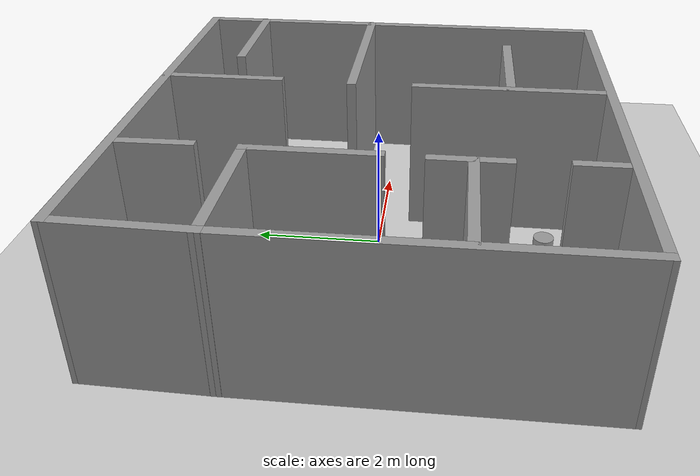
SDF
<sdf version="1.7">
 <world name="default">
  <light name="sun" type="directional">
   <pose>0 0 10 0 -0 0</pose>
   <diffuse>0.8 0.8 0.8 1</diffuse>
   <specular>0.2 0.2 0.2 1</specular>
   <attenuation>
    <range>1000</range>
    <constant>0.9</constant>
    <linear>0.01</linear>
    <quadratic>0.001</quadratic>
   </attenuation>
   <direction>-0.5 0.1 -0.9</direction>
   <spot><inner_angle>0</inner_angle><outer_angle>0</outer_angle><falloff>0</falloff></spot>
  </light>
  <model name="ground_plane">
   <static>1</static>
   <link name="link">
    <collision name="collision">
     <geometry><plane><normal>0 0 1</normal><size>100 100</size></plane></geometry>
     <surface><friction><ode><mu>100</mu><mu2>50</mu2></ode></friction></surface>
    </collision>
    <visual name="visual">
     <cast_shadows>0</cast_shadows>
     <geometry><plane><normal>0 0 1</normal><size>100 100</size></plane></geometry>
     <material>
      <script><uri>file://media/materials/scripts/gazebo.material</uri><name>Gazebo/Grey</name></script>
     </material>
    </visual>
   </link>
  </model>
  <gravity>0 0 -9.8</gravity>
  <magnetic_field>6e-06 2.3e-05 -4.2e-05</magnetic_field>
  <atmosphere type="adiabatic"/>
  <physics type="ode">
   <max_step_size>0.001</max_step_size>
   <real_time_factor>1</real_time_factor>
   <real_time_update_rate>1000</real_time_update_rate>
  </physics>
  <scene><ambient>0.4 0.4 0.4 1</ambient><background>0.7 0.7 0.7 1</background><shadows>1</shadows></scene>
  <spherical_coordinates>
   <surface_model>EARTH_WGS84</surface_model>
   <latitude_deg>0</latitude_deg>
   <longitude_deg>0</longitude_deg>
   <elevation>0</elevation>
   <heading_deg>0</heading_deg>
  </spherical_coordinates>
  <model name="Room">
   <link name="Wall_18">
    <pose>-1.5854 0.745278 0 0 0 -1.5708</pose>
    <visual name="Wall_18_Visual">
     <pose>0 0 1.25 0 -0 0</pose>
     <geometry><box><size>2 0.15 2.5</size></box></geometry>
     <material>
      <script><uri>file://media/materials/scripts/gazebo.material</uri><name>Gazebo/Grey</name></script>
      <ambient>1 1 1 1</ambient>
      <shader type="pixel"/>
     </material>
     <meta><layer>0</layer></meta>
    </visual>
    <collision name="Wall_18_Collision">
     <pose>0 0 1.25 0 -0 0</pose>
     <geometry><box><size>2 0.15 2.5</size></box></geometry>
     <surface>
      <friction>
       <ode><mu>1</mu><mu2>1</mu2><fdir1>0 0 0</fdir1><slip1>0</slip1><slip2>0</slip2></ode>
       <torsional>
        <coefficient>1</coefficient>
        <patch_radius>0</patch_radius>
        <surface_radius>0</surface_radius>
        <use_patch_radius>1</use_patch_radius>
        <ode><slip>0</slip></ode>
       </torsional>
      </friction>
      <bounce><restitution_coefficient>0</restitution_coefficient><threshold>1e+06</threshold></bounce>
      <contact>
       <collide_without_contact>0</collide_without_contact>
       <collide_without_contact_bitmask>1</collide_without_contact_bitmask>
       <collide_bitmask>1</collide_bitmask>
       <ode>
        <soft_cfm>0</soft_cfm>
        <soft_erp>0.2</soft_erp>
        <kp>1e+13</kp>
        <kd>1</kd>
        <max_vel>0.01</max_vel>
        <min_depth>0</min_depth>
       </ode>
       <bullet>
        <split_impulse>1</split_impulse>
        <split_impulse_penetration_threshold>-0.01</split_impulse_penetration_threshold>
        <soft_cfm>0</soft_cfm>
        <soft_erp>0.2</soft_erp>
        <kp>1e+13</kp>
        <kd>1</kd>
       </bullet>
      </contact>
     </surface>
    </collision>
   </link>
   <link name="Wall_20">
    <pose>-2.5905 1.67689 0 0 -0 3.13501</pose>
    <visual name="Wall_20_Visual">
     <pose>0 0 1.25 0 -0 0</pose>
     <geometry><box><size>2.1602 0.15 2.5</size></box></geometry>
     <material>
      <script><uri>file://media/materials/scripts/gazebo.material</uri><name>Gazebo/Grey</name></script>
      <ambient>1 1 1 1</ambient>
      <shader type="pixel"/>
     </material>
     <meta><layer>0</layer></meta>
    </visual>
    <collision name="Wall_20_Collision">
     <pose>0 0 1.25 0 -0 0</pose>
     <geometry><box><size>2.1602 0.15 2.5</size></box></geometry>
     <surface>
      <friction>
       <ode><mu>1</mu><mu2>1</mu2><fdir1>0 0 0</fdir1><slip1>0</slip1><slip2>0</slip2></ode>
       <torsional>
        <coefficient>1</coefficient>
        <patch_radius>0</patch_radius>
        <surface_radius>0</surface_radius>
        <use_patch_radius>1</use_patch_radius>
        <ode><slip>0</slip></ode>
       </torsional>
      </friction>
      <bounce><restitution_coefficient>0</restitution_coefficient><threshold>1e+06</threshold></bounce>
      <contact>
       <collide_without_contact>0</collide_without_contact>
       <collide_without_contact_bitmask>1</collide_without_contact_bitmask>
       <collide_bitmask>1</collide_bitmask>
       <ode>
        <soft_cfm>0</soft_cfm>
        <soft_erp>0.2</soft_erp>
        <kp>1e+13</kp>
        <kd>1</kd>
        <max_vel>0.01</max_vel>
        <min_depth>0</min_depth>
       </ode>
       <bullet>
        <split_impulse>1</split_impulse>
        <split_impulse_penetration_threshold>-0.01</split_impulse_penetration_threshold>
        <soft_cfm>0</soft_cfm>
        <soft_erp>0.2</soft_erp>
        <kp>1e+13</kp>
        <kd>1</kd>
       </bullet>
      </contact>
     </surface>
    </collision>
   </link>
   <link name="Wall_21">
    <pose>-3.58899 -0.915209 0 0 0 -1.56825</pose>
    <visual name="Wall_21_Visual">
     <pose>0 0 1.25 0 -0 0</pose>
     <geometry><box><size>5.34749 0.15 2.5</size></box></geometry>
     <material>
      <script><uri>file://media/materials/scripts/gazebo.material</uri><name>Gazebo/Grey</name></script>
      <ambient>1 1 1 1</ambient>
      <shader type="pixel"/>
     </material>
     <meta><layer>0</layer></meta>
    </visual>
    <collision name="Wall_21_Collision">
     <pose>0 0 1.25 0 -0 0</pose>
     <geometry><box><size>5.34749 0.15 2.5</size></box></geometry>
     <surface>
      <friction>
       <ode><mu>1</mu><mu2>1</mu2><fdir1>0 0 0</fdir1><slip1>0</slip1><slip2>0</slip2></ode>
       <torsional>
        <coefficient>1</coefficient>
        <patch_radius>0</patch_radius>
        <surface_radius>0</surface_radius>
        <use_patch_radius>1</use_patch_radius>
        <ode><slip>0</slip></ode>
       </torsional>
      </friction>
      <bounce><restitution_coefficient>0</restitution_coefficient><threshold>1e+06</threshold></bounce>
      <contact>
       <collide_without_contact>0</collide_without_contact>
       <collide_without_contact_bitmask>1</collide_without_contact_bitmask>
       <collide_bitmask>1</collide_bitmask>
       <ode>
        <soft_cfm>0</soft_cfm>
        <soft_erp>0.2</soft_erp>
        <kp>1e+13</kp>
        <kd>1</kd>
        <max_vel>0.01</max_vel>
        <min_depth>0</min_depth>
       </ode>
       <bullet>
        <split_impulse>1</split_impulse>
        <split_impulse_penetration_threshold>-0.01</split_impulse_penetration_threshold>
        <soft_cfm>0</soft_cfm>
        <soft_erp>0.2</soft_erp>
        <kp>1e+13</kp>
        <kd>1</kd>
       </bullet>
      </contact>
     </surface>
    </collision>
   </link>
   <link name="Wall_22">
    <pose>0.001595 -3.52053 0 0 0 -0.001845</pose>
    <visual name="Wall_22_Visual">
     <pose>0 0 1.25 0 -0 0</pose>
     <geometry><box><size>7.31795 0.15 2.5</size></box></geometry>
     <material>
      <script><uri>file://media/materials/scripts/gazebo.material</uri><name>Gazebo/Grey</name></script>
      <ambient>1 1 1 1</ambient>
      <shader type="pixel"/>
     </material>
     <meta><layer>0</layer></meta>
    </visual>
    <collision name="Wall_22_Collision">
     <pose>0 0 1.25 0 -0 0</pose>
     <geometry><box><size>7.31795 0.15 2.5</size></box></geometry>
     <surface>
      <friction>
       <ode><mu>1</mu><mu2>1</mu2><fdir1>0 0 0</fdir1><slip1>0</slip1><slip2>0</slip2></ode>
       <torsional>
        <coefficient>1</coefficient>
        <patch_radius>0</patch_radius>
        <surface_radius>0</surface_radius>
        <use_patch_radius>1</use_patch_radius>
        <ode><slip>0</slip></ode>
       </torsional>
      </friction>
      <bounce><restitution_coefficient>0</restitution_coefficient><threshold>1e+06</threshold></bounce>
      <contact>
       <collide_without_contact>0</collide_without_contact>
       <collide_without_contact_bitmask>1</collide_without_contact_bitmask>
       <collide_bitmask>1</collide_bitmask>
       <ode>
        <soft_cfm>0</soft_cfm>
        <soft_erp>0.2</soft_erp>
        <kp>1e+13</kp>
        <kd>1</kd>
        <max_vel>0.01</max_vel>
        <min_depth>0</min_depth>
       </ode>
       <bullet>
        <split_impulse>1</split_impulse>
        <split_impulse_penetration_threshold>-0.01</split_impulse_penetration_threshold>
        <soft_cfm>0</soft_cfm>
        <soft_erp>0.2</soft_erp>
        <kp>1e+13</kp>
        <kd>1</kd>
       </bullet>
      </contact>
     </surface>
    </collision>
   </link>
   <link name="Wall_23">
    <pose>3.58875 -0.00133 0 0 -0 1.56989</pose>
    <visual name="Wall_23_Visual">
     <pose>0 0 1.25 0 -0 0</pose>
     <geometry><box><size>7.20167 0.15 2.5</size></box></geometry>
     <material>
      <script><uri>file://media/materials/scripts/gazebo.material</uri><name>Gazebo/Grey</name></script>
      <ambient>1 1 1 1</ambient>
      <shader type="pixel"/>
     </material>
     <meta><layer>0</layer></meta>
    </visual>
    <collision name="Wall_23_Collision">
     <pose>0 0 1.25 0 -0 0</pose>
     <geometry><box><size>7.20167 0.15 2.5</size></box></geometry>
     <surface>
      <friction>
       <ode><mu>1</mu><mu2>1</mu2><fdir1>0 0 0</fdir1><slip1>0</slip1><slip2>0</slip2></ode>
       <torsional>
        <coefficient>1</coefficient>
        <patch_radius>0</patch_radius>
        <surface_radius>0</surface_radius>
        <use_patch_radius>1</use_patch_radius>
        <ode><slip>0</slip></ode>
       </torsional>
      </friction>
      <bounce><restitution_coefficient>0</restitution_coefficient><threshold>1e+06</threshold></bounce>
      <contact>
       <collide_without_contact>0</collide_without_contact>
       <collide_without_contact_bitmask>1</collide_without_contact_bitmask>
       <collide_bitmask>1</collide_bitmask>
       <ode>
        <soft_cfm>0</soft_cfm>
        <soft_erp>0.2</soft_erp>
        <kp>1e+13</kp>
        <kd>1</kd>
        <max_vel>0.01</max_vel>
        <min_depth>0</min_depth>
       </ode>
       <bullet>
        <split_impulse>1</split_impulse>
        <split_impulse_penetration_threshold>-0.01</split_impulse_penetration_threshold>
        <soft_cfm>0</soft_cfm>
        <soft_erp>0.2</soft_erp>
        <kp>1e+13</kp>
        <kd>1</kd>
       </bullet>
      </contact>
     </surface>
    </collision>
   </link>
   <link name="Wall_24">
    <pose>0.015696 3.52449 0 0 -0 3.14159</pose>
    <inertial>
     <mass>1</mass>
     <inertia><ixx>1</ixx><ixy>0</ixy><ixz>0</ixz><iyy>1</iyy><iyz>0</iyz><izz>1</izz></inertia>
    </inertial>
    <visual name="Wall_24_Visual">
     <pose>0 0 1.25 0 -0 0</pose>
     <geometry><box><size>7.30247 0.15 2.5</size></box></geometry>
     <material>
      <script><uri>file://media/materials/scripts/gazebo.material</uri><name>Gazebo/Grey</name></script>
      <ambient>1 1 1 1</ambient>
      <shader type="pixel"><normal_map>__default__</normal_map></shader>
      <diffuse>0 0 0 1</diffuse>
      <specular>0.1 0.1 0.1 1</specular>
      <emissive>0 0 0 1</emissive>
     </material>
     <meta><layer>0</layer></meta>
    </visual>
    <collision name="Wall_24_Collision">
     <pose>0 0 1.25 0 -0 0</pose>
     <geometry><box><size>7.30247 0.15 2.5</size></box></geometry>
     <surface>
      <friction>
       <ode><mu>1</mu><mu2>1</mu2><fdir1>0 0 0</fdir1><slip1>0</slip1><slip2>0</slip2></ode>
       <torsional>
        <coefficient>1</coefficient>
        <patch_radius>0</patch_radius>
        <surface_radius>0</surface_radius>
        <use_patch_radius>1</use_patch_radius>
        <ode><slip>0</slip></ode>
       </torsional>
      </friction>
      <bounce><restitution_coefficient>0</restitution_coefficient><threshold>1e+06</threshold></bounce>
      <contact>
       <collide_without_contact>0</collide_without_contact>
       <collide_without_contact_bitmask>1</collide_without_contact_bitmask>
       <collide_bitmask>1</collide_bitmask>
       <ode>
        <soft_cfm>0</soft_cfm>
        <soft_erp>0.2</soft_erp>
        <kp>1e+13</kp>
        <kd>1</kd>
        <max_vel>0.01</max_vel>
        <min_depth>0</min_depth>
       </ode>
       <bullet>
        <split_impulse>1</split_impulse>
        <split_impulse_penetration_threshold>-0.01</split_impulse_penetration_threshold>
        <soft_cfm>0</soft_cfm>
        <soft_erp>0.2</soft_erp>
        <kp>1e+13</kp>
        <kd>1</kd>
       </bullet>
      </contact>
     </surface>
    </collision>
   </link>
   <link name="Wall_26">
    <pose>-3.57807 2.60399 0 0 0 -1.58984</pose>
    <visual name="Wall_26_Visual">
     <pose>0 0 1.25 0 -0 0</pose>
     <geometry><box><size>1.99132 0.15 2.5</size></box></geometry>
     <material>
      <script><uri>file://media/materials/scripts/gazebo.material</uri><name>Gazebo/Grey</name></script>
      <ambient>1 1 1 1</ambient>
      <shader type="pixel"/>
     </material>
     <meta><layer>0</layer></meta>
    </visual>
    <collision name="Wall_26_Collision">
     <pose>0 0 1.25 0 -0 0</pose>
     <geometry><box><size>1.99132 0.15 2.5</size></box></geometry>
     <surface>
      <friction>
       <ode><mu>1</mu><mu2>1</mu2><fdir1>0 0 0</fdir1><slip1>0</slip1><slip2>0</slip2></ode>
       <torsional>
        <coefficient>1</coefficient>
        <patch_radius>0</patch_radius>
        <surface_radius>0</surface_radius>
        <use_patch_radius>1</use_patch_radius>
        <ode><slip>0</slip></ode>
       </torsional>
      </friction>
      <bounce><restitution_coefficient>0</restitution_coefficient><threshold>1e+06</threshold></bounce>
      <contact>
       <collide_without_contact>0</collide_without_contact>
       <collide_without_contact_bitmask>1</collide_without_contact_bitmask>
       <collide_bitmask>1</collide_bitmask>
       <ode>
        <soft_cfm>0</soft_cfm>
        <soft_erp>0.2</soft_erp>
        <kp>1e+13</kp>
        <kd>1</kd>
        <max_vel>0.01</max_vel>
        <min_depth>0</min_depth>
       </ode>
       <bullet>
        <split_impulse>1</split_impulse>
        <split_impulse_penetration_threshold>-0.01</split_impulse_penetration_threshold>
        <soft_cfm>0</soft_cfm>
        <soft_erp>0.2</soft_erp>
        <kp>1e+13</kp>
        <kd>1</kd>
       </bullet>
      </contact>
     </surface>
    </collision>
   </link>
   <link name="Wall_28">
    <pose>-1.55292 2.96644 0 0 0 -1.55517</pose>
    <visual name="Wall_28_Visual">
     <pose>0 0 1.25 0 -0 0</pose>
     <geometry><box><size>1.2695 0.15 2.5</size></box></geometry>
     <material>
      <script><uri>file://media/materials/scripts/gazebo.material</uri><name>Gazebo/Grey</name></script>
      <ambient>1 1 1 1</ambient>
      <shader type="pixel"/>
     </material>
     <meta><layer>0</layer></meta>
    </visual>
    <collision name="Wall_28_Collision">
     <pose>0 0 1.25 0 -0 0</pose>
     <geometry><box><size>1.2695 0.15 2.5</size></box></geometry>
     <surface>
      <friction>
       <ode><mu>1</mu><mu2>1</mu2><fdir1>0 0 0</fdir1><slip1>0</slip1><slip2>0</slip2></ode>
       <torsional>
        <coefficient>1</coefficient>
        <patch_radius>0</patch_radius>
        <surface_radius>0</surface_radius>
        <use_patch_radius>1</use_patch_radius>
        <ode><slip>0</slip></ode>
       </torsional>
      </friction>
      <bounce><restitution_coefficient>0</restitution_coefficient><threshold>1e+06</threshold></bounce>
      <contact>
       <collide_without_contact>0</collide_without_contact>
       <collide_without_contact_bitmask>1</collide_without_contact_bitmask>
       <collide_bitmask>1</collide_bitmask>
       <ode>
        <soft_cfm>0</soft_cfm>
        <soft_erp>0.2</soft_erp>
        <kp>1e+13</kp>
        <kd>1</kd>
        <max_vel>0.01</max_vel>
        <min_depth>0</min_depth>
       </ode>
       <bullet>
        <split_impulse>1</split_impulse>
        <split_impulse_penetration_threshold>-0.01</split_impulse_penetration_threshold>
        <soft_cfm>0</soft_cfm>
        <soft_erp>0.2</soft_erp>
        <kp>1e+13</kp>
        <kd>1</kd>
       </bullet>
      </contact>
     </surface>
    </collision>
   </link>
   <link name="Wall_30">
    <pose>0.782 2.59915 0 0 0 -1.5708</pose>
    <visual name="Wall_30_Visual">
     <pose>0 0 1.25 0 -0 0</pose>
     <geometry><box><size>1.96897 0.15 2.5</size></box></geometry>
     <material>
      <script><uri>file://media/materials/scripts/gazebo.material</uri><name>Gazebo/Grey</name></script>
      <ambient>1 1 1 1</ambient>
      <shader type="pixel"/>
     </material>
     <meta><layer>0</layer></meta>
    </visual>
    <collision name="Wall_30_Collision">
     <pose>0 0 1.25 0 -0 0</pose>
     <geometry><box><size>1.96897 0.15 2.5</size></box></geometry>
     <surface>
      <friction>
       <ode><mu>1</mu><mu2>1</mu2><fdir1>0 0 0</fdir1><slip1>0</slip1><slip2>0</slip2></ode>
       <torsional>
        <coefficient>1</coefficient>
        <patch_radius>0</patch_radius>
        <surface_radius>0</surface_radius>
        <use_patch_radius>1</use_patch_radius>
        <ode><slip>0</slip></ode>
       </torsional>
      </friction>
      <bounce><restitution_coefficient>0</restitution_coefficient><threshold>1e+06</threshold></bounce>
      <contact>
       <collide_without_contact>0</collide_without_contact>
       <collide_without_contact_bitmask>1</collide_without_contact_bitmask>
       <collide_bitmask>1</collide_bitmask>
       <ode>
        <soft_cfm>0</soft_cfm>
        <soft_erp>0.2</soft_erp>
        <kp>1e+13</kp>
        <kd>1</kd>
        <max_vel>0.01</max_vel>
        <min_depth>0</min_depth>
       </ode>
       <bullet>
        <split_impulse>1</split_impulse>
        <split_impulse_penetration_threshold>-0.01</split_impulse_penetration_threshold>
        <soft_cfm>0</soft_cfm>
        <soft_erp>0.2</soft_erp>
        <kp>1e+13</kp>
        <kd>1</kd>
       </bullet>
      </contact>
     </surface>
    </collision>
   </link>
   <link name="Wall_33">
    <pose>2.65541 2.52919 0 0 -0 3.14159</pose>
    <visual name="Wall_33_Visual">
     <pose>0 0 1.25 0 -0 0</pose>
     <geometry><box><size>2 0.15 2.5</size></box></geometry>
     <material>
      <script><uri>file://media/materials/scripts/gazebo.material</uri><name>Gazebo/Grey</name></script>
      <ambient>1 1 1 1</ambient>
      <shader type="pixel"/>
     </material>
     <meta><layer>0</layer></meta>
    </visual>
    <collision name="Wall_33_Collision">
     <pose>0 0 1.25 0 -0 0</pose>
     <geometry><box><size>2 0.15 2.5</size></box></geometry>
     <surface>
      <friction>
       <ode><mu>1</mu><mu2>1</mu2><fdir1>0 0 0</fdir1><slip1>0</slip1><slip2>0</slip2></ode>
       <torsional>
        <coefficient>1</coefficient>
        <patch_radius>0</patch_radius>
        <surface_radius>0</surface_radius>
        <use_patch_radius>1</use_patch_radius>
        <ode><slip>0</slip></ode>
       </torsional>
      </friction>
      <bounce><restitution_coefficient>0</restitution_coefficient><threshold>1e+06</threshold></bounce>
      <contact>
       <collide_without_contact>0</collide_without_contact>
       <collide_without_contact_bitmask>1</collide_without_contact_bitmask>
       <collide_bitmask>1</collide_bitmask>
       <ode>
        <soft_cfm>0</soft_cfm>
        <soft_erp>0.2</soft_erp>
        <kp>1e+13</kp>
        <kd>1</kd>
        <max_vel>0.01</max_vel>
        <min_depth>0</min_depth>
       </ode>
       <bullet>
        <split_impulse>1</split_impulse>
        <split_impulse_penetration_threshold>-0.01</split_impulse_penetration_threshold>
        <soft_cfm>0</soft_cfm>
        <soft_erp>0.2</soft_erp>
        <kp>1e+13</kp>
        <kd>1</kd>
       </bullet>
      </contact>
     </surface>
    </collision>
   </link>
   <link name="Wall_35">
    <pose>-1.61414 -1.37984 0 0 0 -1.5708</pose>
    <visual name="Wall_35_Visual">
     <pose>0 0 1.25 0 -0 0</pose>
     <geometry><box><size>1.18251 0.15 2.5</size></box></geometry>
     <material>
      <script><uri>file://media/materials/scripts/gazebo.material</uri><name>Gazebo/Grey</name></script>
      <ambient>1 1 1 1</ambient>
      <shader type="pixel"/>
     </material>
     <meta><layer>0</layer></meta>
    </visual>
    <collision name="Wall_35_Collision">
     <pose>0 0 1.25 0 -0 0</pose>
     <geometry><box><size>1.18251 0.15 2.5</size></box></geometry>
     <surface>
      <friction>
       <ode><mu>1</mu><mu2>1</mu2><fdir1>0 0 0</fdir1><slip1>0</slip1><slip2>0</slip2></ode>
       <torsional>
        <coefficient>1</coefficient>
        <patch_radius>0</patch_radius>
        <surface_radius>0</surface_radius>
        <use_patch_radius>1</use_patch_radius>
        <ode><slip>0</slip></ode>
       </torsional>
      </friction>
      <bounce><restitution_coefficient>0</restitution_coefficient><threshold>1e+06</threshold></bounce>
      <contact>
       <collide_without_contact>0</collide_without_contact>
       <collide_without_contact_bitmask>1</collide_without_contact_bitmask>
       <collide_bitmask>1</collide_bitmask>
       <ode>
        <soft_cfm>0</soft_cfm>
        <soft_erp>0.2</soft_erp>
        <kp>1e+13</kp>
        <kd>1</kd>
        <max_vel>0.01</max_vel>
        <min_depth>0</min_depth>
       </ode>
       <bullet>
        <split_impulse>1</split_impulse>
        <split_impulse_penetration_threshold>-0.01</split_impulse_penetration_threshold>
        <soft_cfm>0</soft_cfm>
        <soft_erp>0.2</soft_erp>
        <kp>1e+13</kp>
        <kd>1</kd>
       </bullet>
      </contact>
     </surface>
    </collision>
   </link>
   <link name="Wall_37">
    <pose>-2.57412 -1.42356 0 0 -0 3.14159</pose>
    <visual name="Wall_37_Visual">
     <pose>0 0 1.25 0 -0 0</pose>
     <geometry><box><size>2 0.15 2.5</size></box></geometry>
     <material>
      <script><uri>file://media/materials/scripts/gazebo.material</uri><name>Gazebo/Grey</name></script>
      <ambient>1 1 1 1</ambient>
      <shader type="pixel"/>
     </material>
     <meta><layer>0</layer></meta>
    </visual>
    <collision name="Wall_37_Collision">
     <pose>0 0 1.25 0 -0 0</pose>
     <geometry><box><size>2 0.15 2.5</size></box></geometry>
     <surface>
      <friction>
       <ode><mu>1</mu><mu2>1</mu2><fdir1>0 0 0</fdir1><slip1>0</slip1><slip2>0</slip2></ode>
       <torsional>
        <coefficient>1</coefficient>
        <patch_radius>0</patch_radius>
        <surface_radius>0</surface_radius>
        <use_patch_radius>1</use_patch_radius>
        <ode><slip>0</slip></ode>
       </torsional>
      </friction>
      <bounce><restitution_coefficient>0</restitution_coefficient><threshold>1e+06</threshold></bounce>
      <contact>
       <collide_without_contact>0</collide_without_contact>
       <collide_without_contact_bitmask>1</collide_without_contact_bitmask>
       <collide_bitmask>1</collide_bitmask>
       <ode>
        <soft_cfm>0</soft_cfm>
        <soft_erp>0.2</soft_erp>
        <kp>1e+13</kp>
        <kd>1</kd>
        <max_vel>0.01</max_vel>
        <min_depth>0</min_depth>
       </ode>
       <bullet>
        <split_impulse>1</split_impulse>
        <split_impulse_penetration_threshold>-0.01</split_impulse_penetration_threshold>
        <soft_cfm>0</soft_cfm>
        <soft_erp>0.2</soft_erp>
        <kp>1e+13</kp>
        <kd>1</kd>
       </bullet>
      </contact>
     </surface>
    </collision>
   </link>
   <link name="Wall_39">
    <pose>0.74702 -1.95657 0 0 0 -1.5708</pose>
    <visual name="Wall_39_Visual">
     <pose>0 0 1.25 0 -0 0</pose>
     <geometry><box><size>3 0.15 2.5</size></box></geometry>
     <material>
      <script><uri>file://media/materials/scripts/gazebo.material</uri><name>Gazebo/Grey</name></script>
      <ambient>1 1 1 1</ambient>
      <shader type="pixel"/>
     </material>
     <meta><layer>0</layer></meta>
    </visual>
    <collision name="Wall_39_Collision">
     <pose>0 0 1.25 0 -0 0</pose>
     <geometry><box><size>3 0.15 2.5</size></box></geometry>
     <surface>
      <friction>
       <ode><mu>1</mu><mu2>1</mu2><fdir1>0 0 0</fdir1><slip1>0</slip1><slip2>0</slip2></ode>
       <torsional>
        <coefficient>1</coefficient>
        <patch_radius>0</patch_radius>
        <surface_radius>0</surface_radius>
        <use_patch_radius>1</use_patch_radius>
        <ode><slip>0</slip></ode>
       </torsional>
      </friction>
      <bounce><restitution_coefficient>0</restitution_coefficient><threshold>1e+06</threshold></bounce>
      <contact>
       <collide_without_contact>0</collide_without_contact>
       <collide_without_contact_bitmask>1</collide_without_contact_bitmask>
       <collide_bitmask>1</collide_bitmask>
       <ode>
        <soft_cfm>0</soft_cfm>
        <soft_erp>0.2</soft_erp>
        <kp>1e+13</kp>
        <kd>1</kd>
        <max_vel>0.01</max_vel>
        <min_depth>0</min_depth>
       </ode>
       <bullet>
        <split_impulse>1</split_impulse>
        <split_impulse_penetration_threshold>-0.01</split_impulse_penetration_threshold>
        <soft_cfm>0</soft_cfm>
        <soft_erp>0.2</soft_erp>
        <kp>1e+13</kp>
        <kd>1</kd>
       </bullet>
      </contact>
     </surface>
    </collision>
   </link>
   <link name="Wall_41">
    <pose>1.68951 -2.00074 0 0 -0 0</pose>
    <visual name="Wall_41_Visual">
     <pose>0 0 1.25 0 -0 0</pose>
     <geometry><box><size>2 0.15 2.5</size></box></geometry>
     <material>
      <script><uri>file://media/materials/scripts/gazebo.material</uri><name>Gazebo/Grey</name></script>
      <ambient>1 1 1 1</ambient>
      <shader type="pixel"/>
     </material>
     <meta><layer>0</layer></meta>
    </visual>
    <collision name="Wall_41_Collision">
     <pose>0 0 1.25 0 -0 0</pose>
     <geometry><box><size>2 0.15 2.5</size></box></geometry>
     <surface>
      <friction>
       <ode><mu>1</mu><mu2>1</mu2><fdir1>0 0 0</fdir1><slip1>0</slip1><slip2>0</slip2></ode>
       <torsional>
        <coefficient>1</coefficient>
        <patch_radius>0</patch_radius>
        <surface_radius>0</surface_radius>
        <use_patch_radius>1</use_patch_radius>
        <ode><slip>0</slip></ode>
       </torsional>
      </friction>
      <bounce><restitution_coefficient>0</restitution_coefficient><threshold>1e+06</threshold></bounce>
      <contact>
       <collide_without_contact>0</collide_without_contact>
       <collide_without_contact_bitmask>1</collide_without_contact_bitmask>
       <collide_bitmask>1</collide_bitmask>
       <ode>
        <soft_cfm>0</soft_cfm>
        <soft_erp>0.2</soft_erp>
        <kp>1e+13</kp>
        <kd>1</kd>
        <max_vel>0.01</max_vel>
        <min_depth>0</min_depth>
       </ode>
       <bullet>
        <split_impulse>1</split_impulse>
        <split_impulse_penetration_threshold>-0.01</split_impulse_penetration_threshold>
        <soft_cfm>0</soft_cfm>
        <soft_erp>0.2</soft_erp>
        <kp>1e+13</kp>
        <kd>1</kd>
       </bullet>
      </contact>
     </surface>
    </collision>
   </link>
   <link name="Wall_43">
    <pose>2.17202 0.500342 0 0 -0 0</pose>
    <visual name="Wall_43_Visual">
     <pose>0 0 1.25 0 -0 0</pose>
     <geometry><box><size>3 0.15 2.5</size></box></geometry>
     <material>
      <script><uri>file://media/materials/scripts/gazebo.material</uri><name>Gazebo/Grey</name></script>
      <ambient>1 1 1 1</ambient>
      <shader type="pixel"/>
     </material>
     <meta><layer>0</layer></meta>
    </visual>
    <collision name="Wall_43_Collision">
     <pose>0 0 1.25 0 -0 0</pose>
     <geometry><box><size>3 0.15 2.5</size></box></geometry>
     <surface>
      <friction>
       <ode><mu>1</mu><mu2>1</mu2><fdir1>0 0 0</fdir1><slip1>0</slip1><slip2>0</slip2></ode>
       <torsional>
        <coefficient>1</coefficient>
        <patch_radius>0</patch_radius>
        <surface_radius>0</surface_radius>
        <use_patch_radius>1</use_patch_radius>
        <ode><slip>0</slip></ode>
       </torsional>
      </friction>
      <bounce><restitution_coefficient>0</restitution_coefficient><threshold>1e+06</threshold></bounce>
      <contact>
       <collide_without_contact>0</collide_without_contact>
       <collide_without_contact_bitmask>1</collide_without_contact_bitmask>
       <collide_bitmask>1</collide_bitmask>
       <ode>
        <soft_cfm>0</soft_cfm>
        <soft_erp>0.2</soft_erp>
        <kp>1e+13</kp>
        <kd>1</kd>
        <max_vel>0.01</max_vel>
        <min_depth>0</min_depth>
       </ode>
       <bullet>
        <split_impulse>1</split_impulse>
        <split_impulse_penetration_threshold>-0.01</split_impulse_penetration_threshold>
        <soft_cfm>0</soft_cfm>
        <soft_erp>0.2</soft_erp>
        <kp>1e+13</kp>
        <kd>1</kd>
       </bullet>
      </contact>
     </surface>
    </collision>
   </link>
   <link name="Wall_45">
    <pose>-1.58064 -3.06524 0 0 0 -1.5708</pose>
    <visual name="Wall_45_Visual">
     <pose>0 0 1.25 0 -0 0</pose>
     <geometry><box><size>0.75 0.15 2.5</size></box></geometry>
     <material>
      <script><uri>file://media/materials/scripts/gazebo.material</uri><name>Gazebo/Grey</name></script>
      <ambient>1 1 1 1</ambient>
      <shader type="pixel"/>
     </material>
     <meta><layer>0</layer></meta>
    </visual>
    <collision name="Wall_45_Collision">
     <pose>0 0 1.25 0 -0 0</pose>
     <geometry><box><size>0.75 0.15 2.5</size></box></geometry>
     <surface>
      <friction>
       <ode><mu>1</mu><mu2>1</mu2><fdir1>0 0 0</fdir1><slip1>0</slip1><slip2>0</slip2></ode>
       <torsional>
        <coefficient>1</coefficient>
        <patch_radius>0</patch_radius>
        <surface_radius>0</surface_radius>
        <use_patch_radius>1</use_patch_radius>
        <ode><slip>0</slip></ode>
       </torsional>
      </friction>
      <bounce><restitution_coefficient>0</restitution_coefficient><threshold>1e+06</threshold></bounce>
      <contact>
       <collide_without_contact>0</collide_without_contact>
       <collide_without_contact_bitmask>1</collide_without_contact_bitmask>
       <collide_bitmask>1</collide_bitmask>
       <ode>
        <soft_cfm>0</soft_cfm>
        <soft_erp>0.2</soft_erp>
        <kp>1e+13</kp>
        <kd>1</kd>
        <max_vel>0.01</max_vel>
        <min_depth>0</min_depth>
       </ode>
       <bullet>
        <split_impulse>1</split_impulse>
        <split_impulse_penetration_threshold>-0.01</split_impulse_penetration_threshold>
        <soft_cfm>0</soft_cfm>
        <soft_erp>0.2</soft_erp>
        <kp>1e+13</kp>
        <kd>1</kd>
       </bullet>
      </contact>
     </surface>
    </collision>
   </link>
   <static>1</static>
   <pose>0.01134 0.009619 0 0 -0 0</pose>
  </model>
  <model name="blob">
   <link name="link_0">
    <inertial>
     <mass>0.0430038</mass>
     <inertia>
      <ixx>0.00093384</ixx>
      <ixy>0</ixy>
      <ixz>0</ixz>
      <iyy>0.00093384</iyy>
      <iyz>0</iyz>
      <izz>0.00053662</izz>
     </inertia>
    </inertial>
    <visual name="visual">
     <geometry><cylinder><radius>0.157977</radius><length>0.430945</length></cylinder></geometry>
     <material>
      <lighting>1</lighting>
      <script><uri>file://media/materials/scripts/gazebo.material</uri><name>Gazebo/Grey</name></script>
      <shader type="pixel"><normal_map>__default__</normal_map></shader>
      <ambient>0.3 0.3 0.3 1</ambient>
      <diffuse>0.7 0.7 0.7 1</diffuse>
      <specular>0.01 0.01 0.01 1</specular>
      <emissive>0 0 0 1</emissive>
     </material>
    </visual>
    <collision name="collision_0">
     <geometry><cylinder><radius>0.157977</radius><length>0.430945</length></cylinder></geometry>
     <surface>
      <friction>
       <ode><mu>1</mu><mu2>1</mu2><fdir1>0 0 0</fdir1><slip1>0</slip1><slip2>0</slip2></ode>
       <torsional>
        <coefficient>1</coefficient>
        <patch_radius>0</patch_radius>
        <surface_radius>0</surface_radius>
        <use_patch_radius>1</use_patch_radius>
        <ode><slip>0</slip></ode>
       </torsional>
      </friction>
      <bounce><restitution_coefficient>0</restitution_coefficient><threshold>1e+06</threshold></bounce>
      <contact>
       <collide_without_contact>0</collide_without_contact>
       <collide_without_contact_bitmask>1</collide_without_contact_bitmask>
       <collide_bitmask>1</collide_bitmask>
       <ode>
        <soft_cfm>0</soft_cfm>
        <soft_erp>0.2</soft_erp>
        <kp>1e+13</kp>
        <kd>1</kd>
        <max_vel>0.01</max_vel>
        <min_depth>0</min_depth>
       </ode>
       <bullet>
        <split_impulse>1</split_impulse>
        <split_impulse_penetration_threshold>-0.01</split_impulse_penetration_threshold>
        <soft_cfm>0</soft_cfm>
        <soft_erp>0.2</soft_erp>
        <kp>1e+13</kp>
        <kd>1</kd>
       </bullet>
      </contact>
     </surface>
    </collision>
   </link>
   <static>1</static>
   <pose>-2.49826 2.81597 0.225398 0 -0 0</pose>
  </model>
  <model name="blob_clone">
   <link name="link_0">
    <inertial>
     <mass>0.0430038</mass>
     <inertia>
      <ixx>0.00093384</ixx>
      <ixy>0</ixy>
      <ixz>0</ixz>
      <iyy>0.00093384</iyy>
      <iyz>0</iyz>
      <izz>0.00053662</izz>
     </inertia>
    </inertial>
    <visual name="visual">
     <geometry><cylinder><radius>0.157977</radius><length>0.430945</length></cylinder></geometry>
     <material>
      <lighting>1</lighting>
      <script><uri>file://media/materials/scripts/gazebo.material</uri><name>Gazebo/Grey</name></script>
      <shader type="pixel"><normal_map>__default__</normal_map></shader>
      <ambient>0.3 0.3 0.3 1</ambient>
      <diffuse>0.7 0.7 0.7 1</diffuse>
      <specular>0.01 0.01 0.01 1</specular>
      <emissive>0 0 0 1</emissive>
     </material>
    </visual>
    <collision name="collision_0">
     <geometry><cylinder><radius>0.157977</radius><length>0.430945</length></cylinder></geometry>
     <surface>
      <friction>
       <ode><mu>1</mu><mu2>1</mu2><fdir1>0 0 0</fdir1><slip1>0</slip1><slip2>0</slip2></ode>
       <torsional>
        <coefficient>1</coefficient>
        <patch_radius>0</patch_radius>
        <surface_radius>0</surface_radius>
        <use_patch_radius>1</use_patch_radius>
        <ode><slip>0</slip></ode>
       </torsional>
      </friction>
      <bounce><restitution_coefficient>0</restitution_coefficient><threshold>1e+06</threshold></bounce>
      <contact>
       <collide_without_contact>0</collide_without_contact>
       <collide_without_contact_bitmask>1</collide_without_contact_bitmask>
       <collide_bitmask>1</collide_bitmask>
       <ode>
        <soft_cfm>0</soft_cfm>
        <soft_erp>0.2</soft_erp>
        <kp>1e+13</kp>
        <kd>1</kd>
        <max_vel>0.01</max_vel>
        <min_depth>0</min_depth>
       </ode>
       <bullet>
        <split_impulse>1</split_impulse>
        <split_impulse_penetration_threshold>-0.01</split_impulse_penetration_threshold>
        <soft_cfm>0</soft_cfm>
        <soft_erp>0.2</soft_erp>
        <kp>1e+13</kp>
        <kd>1</kd>
       </bullet>
      </contact>
     </surface>
    </collision>
   </link>
   <static>1</static>
   <pose>-2.62718 0.734263 0.20037 0 -0 0</pose>
  </model>
  <model name="blob_clone_0">
   <link name="link_0">
    <inertial>
     <mass>0.0430038</mass>
     <inertia>
      <ixx>0.00093384</ixx>
      <ixy>0</ixy>
      <ixz>0</ixz>
      <iyy>0.00093384</iyy>
      <iyz>0</iyz>
      <izz>0.00053662</izz>
     </inertia>
    </inertial>
    <visual name="visual">
     <geometry><cylinder><radius>0.157977</radius><length>0.430945</length></cylinder></geometry>
     <material>
      <lighting>1</lighting>
      <script><uri>file://media/materials/scripts/gazebo.material</uri><name>Gazebo/Grey</name></script>
      <shader type="pixel"><normal_map>__default__</normal_map></shader>
      <ambient>0.3 0.3 0.3 1</ambient>
      <diffuse>0.7 0.7 0.7 1</diffuse>
      <specular>0.01 0.01 0.01 1</specular>
      <emissive>0 0 0 1</emissive>
     </material>
    </visual>
    <collision name="collision_0">
     <geometry><cylinder><radius>0.157977</radius><length>0.430945</length></cylinder></geometry>
     <surface>
      <friction>
       <ode><mu>1</mu><mu2>1</mu2><fdir1>0 0 0</fdir1><slip1>0</slip1><slip2>0</slip2></ode>
       <torsional>
        <coefficient>1</coefficient>
        <patch_radius>0</patch_radius>
        <surface_radius>0</surface_radius>
        <use_patch_radius>1</use_patch_radius>
        <ode><slip>0</slip></ode>
       </torsional>
      </friction>
      <bounce><restitution_coefficient>0</restitution_coefficient><threshold>1e+06</threshold></bounce>
      <contact>
       <collide_without_contact>0</collide_without_contact>
       <collide_without_contact_bitmask>1</collide_without_contact_bitmask>
       <collide_bitmask>1</collide_bitmask>
       <ode>
        <soft_cfm>0</soft_cfm>
        <soft_erp>0.2</soft_erp>
        <kp>1e+13</kp>
        <kd>1</kd>
        <max_vel>0.01</max_vel>
        <min_depth>0</min_depth>
       </ode>
       <bullet>
        <split_impulse>1</split_impulse>
        <split_impulse_penetration_threshold>-0.01</split_impulse_penetration_threshold>
        <soft_cfm>0</soft_cfm>
        <soft_erp>0.2</soft_erp>
        <kp>1e+13</kp>
        <kd>1</kd>
       </bullet>
      </contact>
     </surface>
    </collision>
   </link>
   <static>1</static>
   <pose>2.08196 1.75815 0.225398 0 -0 0</pose>
  </model>
  <model name="blob_clone_1">
   <link name="link_0">
    <inertial>
     <mass>0.0430038</mass>
     <inertia>
      <ixx>0.00093384</ixx>
      <ixy>0</ixy>
      <ixz>0</ixz>
      <iyy>0.00093384</iyy>
      <iyz>0</iyz>
      <izz>0.00053662</izz>
     </inertia>
    </inertial>
    <visual name="visual">
     <geometry><cylinder><radius>0.157977</radius><length>0.430945</length></cylinder></geometry>
     <material>
      <lighting>1</lighting>
      <script><uri>file://media/materials/scripts/gazebo.material</uri><name>Gazebo/Grey</name></script>
      <shader type="pixel"><normal_map>__default__</normal_map></shader>
      <ambient>0.3 0.3 0.3 1</ambient>
      <diffuse>0.7 0.7 0.7 1</diffuse>
      <specular>0.01 0.01 0.01 1</specular>
      <emissive>0 0 0 1</emissive>
     </material>
    </visual>
    <collision name="collision_0">
     <geometry><cylinder><radius>0.157977</radius><length>0.430945</length></cylinder></geometry>
     <surface>
      <friction>
       <ode><mu>1</mu><mu2>1</mu2><fdir1>0 0 0</fdir1><slip1>0</slip1><slip2>0</slip2></ode>
       <torsional>
        <coefficient>1</coefficient>
        <patch_radius>0</patch_radius>
        <surface_radius>0</surface_radius>
        <use_patch_radius>1</use_patch_radius>
        <ode><slip>0</slip></ode>
       </torsional>
      </friction>
      <bounce><restitution_coefficient>0</restitution_coefficient><threshold>1e+06</threshold></bounce>
      <contact>
       <collide_without_contact>0</collide_without_contact>
       <collide_without_contact_bitmask>1</collide_without_contact_bitmask>
       <collide_bitmask>1</collide_bitmask>
       <ode>
        <soft_cfm>0</soft_cfm>
        <soft_erp>0.2</soft_erp>
        <kp>1e+13</kp>
        <kd>1</kd>
        <max_vel>0.01</max_vel>
        <min_depth>0</min_depth>
       </ode>
       <bullet>
        <split_impulse>1</split_impulse>
        <split_impulse_penetration_threshold>-0.01</split_impulse_penetration_threshold>
        <soft_cfm>0</soft_cfm>
        <soft_erp>0.2</soft_erp>
        <kp>1e+13</kp>
        <kd>1</kd>
       </bullet>
      </contact>
     </surface>
    </collision>
   </link>
   <static>1</static>
   <pose>2.95563 3.14969 0.225398 0 -0 0</pose>
  </model>
  <model name="blob_clone_2">
   <link name="link_0">
    <inertial>
     <mass>0.0430038</mass>
     <inertia>
      <ixx>0.00093384</ixx>
      <ixy>0</ixy>
      <ixz>0</ixz>
      <iyy>0.00093384</iyy>
      <iyz>0</iyz>
      <izz>0.00053662</izz>
     </inertia>
    </inertial>
    <visual name="visual">
     <geometry><cylinder><radius>0.157977</radius><length>0.430945</length></cylinder></geometry>
     <material>
      <lighting>1</lighting>
      <script><uri>file://media/materials/scripts/gazebo.material</uri><name>Gazebo/Grey</name></script>
      <shader type="pixel"><normal_map>__default__</normal_map></shader>
      <ambient>0.3 0.3 0.3 1</ambient>
      <diffuse>0.7 0.7 0.7 1</diffuse>
      <specular>0.01 0.01 0.01 1</specular>
      <emissive>0 0 0 1</emissive>
     </material>
    </visual>
    <collision name="collision_0">
     <geometry><cylinder><radius>0.157977</radius><length>0.430945</length></cylinder></geometry>
     <surface>
      <friction>
       <ode><mu>1</mu><mu2>1</mu2><fdir1>0 0 0</fdir1><slip1>0</slip1><slip2>0</slip2></ode>
       <torsional>
        <coefficient>1</coefficient>
        <patch_radius>0</patch_radius>
        <surface_radius>0</surface_radius>
        <use_patch_radius>1</use_patch_radius>
        <ode><slip>0</slip></ode>
       </torsional>
      </friction>
      <bounce><restitution_coefficient>0</restitution_coefficient><threshold>1e+06</threshold></bounce>
      <contact>
       <collide_without_contact>0</collide_without_contact>
       <collide_without_contact_bitmask>1</collide_without_contact_bitmask>
       <collide_bitmask>1</collide_bitmask>
       <ode>
        <soft_cfm>0</soft_cfm>
        <soft_erp>0.2</soft_erp>
        <kp>1e+13</kp>
        <kd>1</kd>
        <max_vel>0.01</max_vel>
        <min_depth>0</min_depth>
       </ode>
       <bullet>
        <split_impulse>1</split_impulse>
        <split_impulse_penetration_threshold>-0.01</split_impulse_penetration_threshold>
        <soft_cfm>0</soft_cfm>
        <soft_erp>0.2</soft_erp>
        <kp>1e+13</kp>
        <kd>1</kd>
       </bullet>
      </contact>
     </surface>
    </collision>
   </link>
   <static>1</static>
   <pose>2.58752 -0.700485 0.225398 0 -0 0</pose>
  </model>
  <model name="blob_clone_3">
   <link name="link_0">
    <inertial>
     <mass>0.0430038</mass>
     <inertia>
      <ixx>0.00093384</ixx>
      <ixy>0</ixy>
      <ixz>0</ixz>
      <iyy>0.00093384</iyy>
      <iyz>0</iyz>
      <izz>0.00053662</izz>
     </inertia>
    </inertial>
    <visual name="visual">
     <geometry><cylinder><radius>0.157977</radius><length>0.430945</length></cylinder></geometry>
     <material>
      <lighting>1</lighting>
      <script><uri>file://media/materials/scripts/gazebo.material</uri><name>Gazebo/Grey</name></script>
      <shader type="pixel"><normal_map>__default__</normal_map></shader>
      <ambient>0.3 0.3 0.3 1</ambient>
      <diffuse>0.7 0.7 0.7 1</diffuse>
      <specular>0.01 0.01 0.01 1</specular>
      <emissive>0 0 0 1</emissive>
     </material>
    </visual>
    <collision name="collision_0">
     <geometry><cylinder><radius>0.157977</radius><length>0.430945</length></cylinder></geometry>
     <surface>
      <friction>
       <ode><mu>1</mu><mu2>1</mu2><fdir1>0 0 0</fdir1><slip1>0</slip1><slip2>0</slip2></ode>
       <torsional>
        <coefficient>1</coefficient>
        <patch_radius>0</patch_radius>
        <surface_radius>0</surface_radius>
        <use_patch_radius>1</use_patch_radius>
        <ode><slip>0</slip></ode>
       </torsional>
      </friction>
      <bounce><restitution_coefficient>0</restitution_coefficient><threshold>1e+06</threshold></bounce>
      <contact>
       <collide_without_contact>0</collide_without_contact>
       <collide_without_contact_bitmask>1</collide_without_contact_bitmask>
       <collide_bitmask>1</collide_bitmask>
       <ode>
        <soft_cfm>0</soft_cfm>
        <soft_erp>0.2</soft_erp>
        <kp>1e+13</kp>
        <kd>1</kd>
        <max_vel>0.01</max_vel>
        <min_depth>0</min_depth>
       </ode>
       <bullet>
        <split_impulse>1</split_impulse>
        <split_impulse_penetration_threshold>-0.01</split_impulse_penetration_threshold>
        <soft_cfm>0</soft_cfm>
        <soft_erp>0.2</soft_erp>
        <kp>1e+13</kp>
        <kd>1</kd>
       </bullet>
      </contact>
     </surface>
    </collision>
   </link>
   <static>1</static>
   <pose>2.03719 -2.95775 0.225398 0 -0 0</pose>
  </model>
  <model name="blob_clone_4">
   <link name="link_0">
    <inertial>
     <mass>0.0430038</mass>
     <inertia>
      <ixx>0.00093384</ixx>
      <ixy>0</ixy>
      <ixz>0</ixz>
      <iyy>0.00093384</iyy>
      <iyz>0</iyz>
      <izz>0.00053662</izz>
     </inertia>
    </inertial>
    <visual name="visual">
     <geometry><cylinder><radius>0.157977</radius><length>0.430945</length></cylinder></geometry>
     <material>
      <lighting>1</lighting>
      <script><uri>file://media/materials/scripts/gazebo.material</uri><name>Gazebo/Grey</name></script>
      <shader type="pixel"><normal_map>__default__</normal_map></shader>
      <ambient>0.3 0.3 0.3 1</ambient>
      <diffuse>0.7 0.7 0.7 1</diffuse>
      <specular>0.01 0.01 0.01 1</specular>
      <emissive>0 0 0 1</emissive>
     </material>
    </visual>
    <collision name="collision_0">
     <geometry><cylinder><radius>0.157977</radius><length>0.430945</length></cylinder></geometry>
     <surface>
      <friction>
       <ode><mu>1</mu><mu2>1</mu2><fdir1>0 0 0</fdir1><slip1>0</slip1><slip2>0</slip2></ode>
       <torsional>
        <coefficient>1</coefficient>
        <patch_radius>0</patch_radius>
        <surface_radius>0</surface_radius>
        <use_patch_radius>1</use_patch_radius>
        <ode><slip>0</slip></ode>
       </torsional>
      </friction>
      <bounce><restitution_coefficient>0</restitution_coefficient><threshold>1e+06</threshold></bounce>
      <contact>
       <collide_without_contact>0</collide_without_contact>
       <collide_without_contact_bitmask>1</collide_without_contact_bitmask>
       <collide_bitmask>1</collide_bitmask>
       <ode>
        <soft_cfm>0</soft_cfm>
        <soft_erp>0.2</soft_erp>
        <kp>1e+13</kp>
        <kd>1</kd>
        <max_vel>0.01</max_vel>
        <min_depth>0</min_depth>
       </ode>
       <bullet>
        <split_impulse>1</split_impulse>
        <split_impulse_penetration_threshold>-0.01</split_impulse_penetration_threshold>
        <soft_cfm>0</soft_cfm>
        <soft_erp>0.2</soft_erp>
        <kp>1e+13</kp>
        <kd>1</kd>
       </bullet>
      </contact>
     </surface>
    </collision>
   </link>
   <static>1</static>
   <pose>-2.52826 -2.53218 0.225398 0 -0 0</pose>
  </model>
  <model name="blob_clone_5">
   <link name="link_0">
    <inertial>
     <mass>0.0430038</mass>
     <inertia>
      <ixx>0.00093384</ixx>
      <ixy>0</ixy>
      <ixz>0</ixz>
      <iyy>0.00093384</iyy>
      <iyz>0</iyz>
      <izz>0.00053662</izz>
     </inertia>
    </inertial>
    <visual name="visual">
     <geometry><cylinder><radius>0.157977</radius><length>0.430945</length></cylinder></geometry>
     <material>
      <lighting>1</lighting>
      <script><uri>file://media/materials/scripts/gazebo.material</uri><name>Gazebo/Grey</name></script>
      <shader type="pixel"><normal_map>__default__</normal_map></shader>
      <ambient>0.3 0.3 0.3 1</ambient>
      <diffuse>0.7 0.7 0.7 1</diffuse>
      <specular>0.01 0.01 0.01 1</specular>
      <emissive>0 0 0 1</emissive>
     </material>
    </visual>
    <collision name="collision_0">
     <geometry><cylinder><radius>0.157977</radius><length>0.430945</length></cylinder></geometry>
     <surface>
      <friction>
       <ode><mu>1</mu><mu2>1</mu2><fdir1>0 0 0</fdir1><slip1>0</slip1><slip2>0</slip2></ode>
       <torsional>
        <coefficient>1</coefficient>
        <patch_radius>0</patch_radius>
        <surface_radius>0</surface_radius>
        <use_patch_radius>1</use_patch_radius>
        <ode><slip>0</slip></ode>
       </torsional>
      </friction>
      <bounce><restitution_coefficient>0</restitution_coefficient><threshold>1e+06</threshold></bounce>
      <contact>
       <collide_without_contact>0</collide_without_contact>
       <collide_without_contact_bitmask>1</collide_without_contact_bitmask>
       <collide_bitmask>1</collide_bitmask>
       <ode>
        <soft_cfm>0</soft_cfm>
        <soft_erp>0.2</soft_erp>
        <kp>1e+13</kp>
        <kd>1</kd>
        <max_vel>0.01</max_vel>
        <min_depth>0</min_depth>
       </ode>
       <bullet>
        <split_impulse>1</split_impulse>
        <split_impulse_penetration_threshold>-0.01</split_impulse_penetration_threshold>
        <soft_cfm>0</soft_cfm>
        <soft_erp>0.2</soft_erp>
        <kp>1e+13</kp>
        <kd>1</kd>
       </bullet>
      </contact>
     </surface>
    </collision>
   </link>
   <static>1</static>
   <pose>-0.24963 -2.6211 0.225398 0 -0 0</pose>
  </model>
  <model name="blob_clone_6">
   <link name="link_0">
    <inertial>
     <mass>0.0430038</mass>
     <inertia>
      <ixx>0.00093384</ixx>
      <ixy>0</ixy>
      <ixz>0</ixz>
      <iyy>0.00093384</iyy>
      <iyz>0</iyz>
      <izz>0.00053662</izz>
     </inertia>
    </inertial>
    <visual name="visual">
     <geometry><cylinder><radius>0.157977</radius><length>0.430945</length></cylinder></geometry>
     <material>
      <lighting>1</lighting>
      <script><uri>file://media/materials/scripts/gazebo.material</uri><name>Gazebo/Grey</name></script>
      <shader type="pixel"><normal_map>__default__</normal_map></shader>
      <ambient>0.3 0.3 0.3 1</ambient>
      <diffuse>0.7 0.7 0.7 1</diffuse>
      <specular>0.01 0.01 0.01 1</specular>
      <emissive>0 0 0 1</emissive>
     </material>
    </visual>
    <collision name="collision_0">
     <geometry><cylinder><radius>0.157977</radius><length>0.430945</length></cylinder></geometry>
     <surface>
      <friction>
       <ode><mu>1</mu><mu2>1</mu2><fdir1>0 0 0</fdir1><slip1>0</slip1><slip2>0</slip2></ode>
       <torsional>
        <coefficient>1</coefficient>
        <patch_radius>0</patch_radius>
        <surface_radius>0</surface_radius>
        <use_patch_radius>1</use_patch_radius>
        <ode><slip>0</slip></ode>
       </torsional>
      </friction>
      <bounce><restitution_coefficient>0</restitution_coefficient><threshold>1e+06</threshold></bounce>
      <contact>
       <collide_without_contact>0</collide_without_contact>
       <collide_without_contact_bitmask>1</collide_without_contact_bitmask>
       <collide_bitmask>1</collide_bitmask>
       <ode>
        <soft_cfm>0</soft_cfm>
        <soft_erp>0.2</soft_erp>
        <kp>1e+13</kp>
        <kd>1</kd>
        <max_vel>0.01</max_vel>
        <min_depth>0</min_depth>
       </ode>
       <bullet>
        <split_impulse>1</split_impulse>
        <split_impulse_penetration_threshold>-0.01</split_impulse_penetration_threshold>
        <soft_cfm>0</soft_cfm>
        <soft_erp>0.2</soft_erp>
        <kp>1e+13</kp>
        <kd>1</kd>
       </bullet>
      </contact>
     </surface>
    </collision>
   </link>
   <static>1</static>
   <pose>-0.083118 2.38672 0.225398 0 -0 0</pose>
  </model>
 </world>
</sdf>
